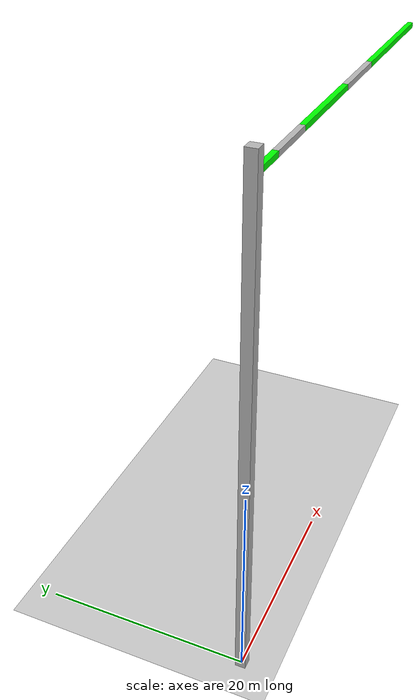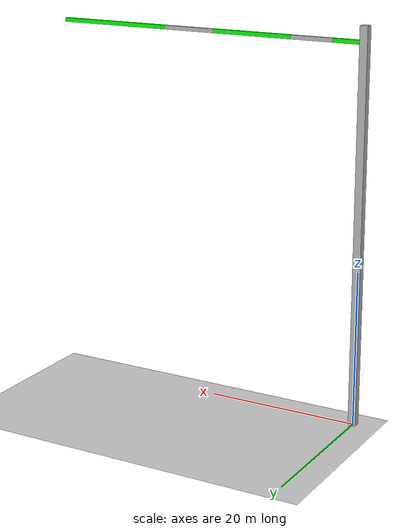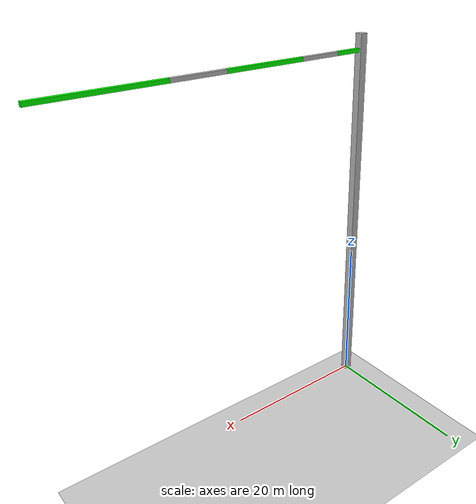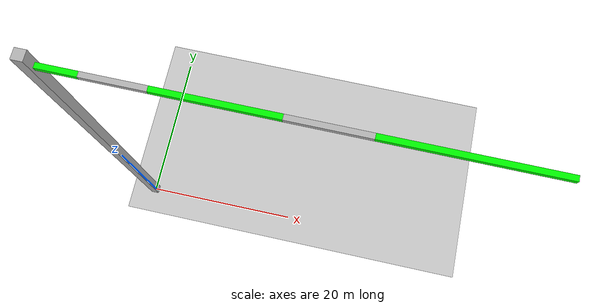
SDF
<?xml version="1.0" ?>
<sdf version="1.8">
    <world name="left_arm_ik_con">
        <physics name="1ms" type="ignored">
            <max_step_size>0.001</max_step_size>
            <real_time_factor>1.0</real_time_factor>
        </physics>
        <plugin
            filename="libignition-gazebo-physics-system.so"
            name="ignition::gazebo::systems::Physics">
        </plugin>
        <plugin
            filename="libignition-gazebo-user-commands-system.so"
            name="ignition::gazebo::systems::UserCommands">
        </plugin>
        <plugin
            filename="libignition-gazebo-scene-broadcaster-system.so"
            name="ignition::gazebo::systems::SceneBroadcaster">
        </plugin>

         <gui fullscreen="0">

        <!-- 3D scene -->
        <plugin filename="GzScene3D" name="3D View">
            <ignition-gui>
            <title>3D View</title>
            <property type="bool" key="showTitleBar">false</property>
            <property type="string" key="state">docked</property>
            </ignition-gui>

            <engine>ogre2</engine>
            <scene>scene</scene>
            <ambient_light>0.4 0.4 0.4</ambient_light>
            <background_color>0.8 0.8 0.8</background_color>
            <camera_pose>2 2 2 0 0.5 -2.5</camera_pose>
        </plugin>

        <!-- World control -->
        <plugin filename="WorldControl" name="World control">
            <ignition-gui>
            <title>World control</title>
            <property type="bool" key="showTitleBar">false</property>
            <property type="bool" key="resizable">false</property>
            <property type="double" key="height">72</property>
            <property type="double" key="width">121</property>
            <property type="double" key="z">1</property>

            <property type="string" key="state">floating</property>
            <anchors target="3D View">
                <line own="left" target="left"/>
                <line own="bottom" target="bottom"/>
            </anchors>
            </ignition-gui>

            <play_pause>true</play_pause>
            <step>true</step>
            <start_paused>true</start_paused>

        </plugin>

        <!-- World statistics -->
        <plugin filename="WorldStats" name="World stats">
            <ignition-gui>
            <title>World stats</title>
            <property type="bool" key="showTitleBar">false</property>
            <property type="bool" key="resizable">false</property>
            <property type="double" key="height">110</property>
            <property type="double" key="width">290</property>
            <property type="double" key="z">1</property>

            <property type="string" key="state">floating</property>
            <anchors target="3D View">
                <line own="right" target="right"/>
                <line own="bottom" target="bottom"/>
            </anchors>
            </ignition-gui>

            <sim_time>true</sim_time>
            <real_time>true</real_time>
            <real_time_factor>true</real_time_factor>
            <iterations>true</iterations>
        </plugin>

        <plugin filename="JointPositionController" name="JointPositionController">
            <ignition-gui>
            <property type="double" key="height">600</property>
            <property type="double" key="width">400</property>

            <property type="string" key="state">floating</property>
            <anchors target="3D View">
                <line own="right" target="right"/>
                <line own="top" target="top"/>
            </anchors>
            </ignition-gui>
            <model_name>body</model_name>
        </plugin>
        </gui>

        <light type="directional" name="sun">
            <cast_shadows>true</cast_shadows>
            <pose>0 0 10 0 0 0</pose>
            <diffuse>0.8 0.8 0.8 1</diffuse>
            <specular>0.2 0.2 0.2 1</specular>
            <attenuation>
                <range>1000</range>
                <constant>0.9</constant>
                <linear>0.01</linear>
                <quadratic>0.001</quadratic>
            </attenuation>
            <direction>-0.5 0.1 -0.9</direction>
        </light>

        <model name="ground_plane">
            <static>true</static>
            <link name="link">
                <collision name="collision">
                <geometry>
                    <plane>
                    <normal>0 0 1</normal>
                    </plane>
                </geometry>
                </collision>
                <visual name="visual">
                <geometry>
                    <plane>
                    <normal>0 0 1</normal>
                    <size>1000 1000</size>
                    </plane>
                </geometry>
                <material>
                    <ambient>0.8 0.8 0.8 1</ambient>
                    <diffuse>0.8 0.8 0.8 1</diffuse>
                    <specular>0.8 0.8 0.8 1</specular>
                </material>
                </visual>
            </link>
        </model>

        <model name="body">
            <joint name="weld" type="fixed">
                <pose>0 0 0 0 0 0</pose>
                <parent>world</parent>
                <child>base_link</child>
            </joint>
            <link name="base_link">
                <pose>0 0 25 0 0 0</pose>
                <visual name="visual">
                    <geometry>
                        <box>
                            <size>1 1 50</size>
                        </box>
                    </geometry>
                </visual>
                <collision name="collision">
                    <geometry>
                    <box>
                        <size>1 1 50</size>
                    </box>
                    </geometry>
                </collision>
            </link>
            <joint name ="ID101" type="revolute">
                <pose relative_to='base_link'>0.5 0 23 0 0 0</pose>
                <parent>world</parent>
                <child>l1_link</child>
                <axis>
                    <xyz>1 0 0</xyz>
                    <limit>
                        <lower>-3.14</lower>
                        <upper>3.14</upper>
                    </limit>
                    <dynamics>
                        <damping>0.1</damping>
                    </dynamics>
                </axis>
            </joint>
            <link name="l1_link">
                <pose relative_to='ID101'>1.75 0 0 0 0 0</pose>
                <inertial>
                    <mass>0.00001</mass>
                    <inertia>
                        <ixx>0.001</ixx>
                        <ixy>0.0</ixy>
                        <ixz>0.0</ixz>
                        <iyy>0.001</iyy>
                        <iyz>0.0</iyz>
                        <izz>0.001</izz>
                    </inertia>
                </inertial>
                <visual name="visual">
                    <geometry>
                        <box>
                            <size>3.5 0.5 0.5</size>
                        </box>
                    </geometry>
                    <material>
                        <ambient>0.0 1 0.0 1</ambient>
                        <diffuse>0.0 1 0.0 1</diffuse>
                        <specular>0.0 1 0.0 1</specular>
                    </material>
                </visual>
                <collision name="collision">
                    <geometry>
                        <box>
                            <size>3.5 0.5 0.5</size>
                        </box>
                    </geometry>
                </collision>
            </link>
            <joint name ="ID102" type="revolute">
                <pose relative_to='l1_link'>1.75 0 0 0 0 0</pose>
                <parent>l1_link</parent>
                <child>l2_link</child>
                <axis>
                    <xyz>0 0 1</xyz>
                    <limit>
                        <lower>-3.14</lower>
                        <upper>3.14</upper>
                    </limit>
                    <dynamics>
                        <damping>0.1</damping>
                    </dynamics>
                </axis>
            </joint>
            <link name="l2_link">
                <pose relative_to='ID102'>2.75 0 0 0 0 0</pose>
                <inertial>
                    <mass>0.00001</mass>
                    <inertia>
                        <ixx>0.001</ixx>
                        <ixy>0.0</ixy>
                        <ixz>0.0</ixz>
                        <iyy>0.001</iyy>
                        <iyz>0.0</iyz>
                        <izz>0.001</izz>
                    </inertia>
                </inertial>
                <visual name="visual">
                    <geometry>
                        <box>
                            <size>5.5 0.5 0.5</size>
                        </box>
                    </geometry>
                </visual>
                <collision name="collision">
                    <geometry>
                        <box>
                            <size>5.5 0.5 0.5</size>
                        </box>
                    </geometry>
                </collision>
            </link>
            <joint name ="ID103" type="revolute">
                <pose relative_to='l2_link'>2.75 0 0 0 0 0</pose>
                <parent>l2_link</parent>
                <child>l3_link</child>
                <axis>
                    <xyz>1 0 0</xyz>
                    <limit>
                        <lower>-3.14</lower>
                        <upper>3.14</upper>
                    </limit>
                    <dynamics>
                        <damping>0.1</damping>
                    </dynamics>
                </axis>
            </joint>
            <link name="l3_link">
                <pose relative_to='ID103'>5.25 0 0 0 0 0</pose>
                <inertial>
                    <mass>0.00001</mass>
                    <inertia>
                        <ixx>0.001</ixx>
                        <ixy>0.0</ixy>
                        <ixz>0.0</ixz>
                        <iyy>0.001</iyy>
                        <iyz>0.0</iyz>
                        <izz>0.001</izz>
                    </inertia>
                </inertial>
                <visual name="visual">
                    <geometry>
                        <box>
                            <size>10.5 0.5 0.5</size>
                        </box>
                    </geometry>
                    <material>
                        <ambient>0.0 1 0.0 1</ambient>
                        <diffuse>0.0 1 0.0 1</diffuse>
                        <specular>0.0 1 0.0 1</specular>
                    </material>
                </visual>
                <collision name="collision">
                    <geometry>
                        <box>
                            <size>10.5 0.5 0.5</size>
                        </box>
                    </geometry>
                </collision>
            </link>
            <joint name ="ID104" type="revolute">
                <pose relative_to='l3_link'>5.25 0 0 0 0 0</pose>
                <parent>l3_link</parent>
                <child>l4_link</child>
                <axis>
                    <xyz>0 1 0</xyz>
                    <limit>
                        <lower>-3.14</lower>
                        <upper>3.14</upper>
                    </limit>
                    <dynamics>
                        <damping>0.1</damping>
                    </dynamics>
                </axis>
            </joint>
            <link name="l4_link">
                <pose relative_to='ID104'>3.5 0 0 0 0 0</pose>
                <inertial>
                    <mass>0.00001</mass>
                    <inertia>
                        <ixx>0.001</ixx>
                        <ixy>0.0</ixy>
                        <ixz>0.0</ixz>
                        <iyy>0.001</iyy>
                        <iyz>0.0</iyz>
                        <izz>0.001</izz>
                    </inertia>
                </inertial>
                <visual name="visual">
                    <geometry>
                        <box>
                            <size>7 0.5 0.5</size>
                        </box>
                    </geometry>
                </visual>
                <collision name="collision">
                    <geometry>
                        <box>
                            <size>7 0.5 0.5</size>
                        </box>
                    </geometry>
                </collision>
            </link>
            <joint name ="ID105" type="revolute">
                <pose relative_to='l4_link'>3.5 0 0 0 0 0</pose>
                <parent>l4_link</parent>
                <child>l5_link</child>
                <axis>
                    <xyz>0 1 0</xyz>
                    <limit>
                        <lower>-3.14</lower>
                        <upper>3.14</upper>
                    </limit>
                    <dynamics>
                        <damping>0.1</damping>
                    </dynamics>
                </axis>
            </joint>
            <link name="l5_link">
                <pose relative_to='ID105'>7.5 0 0 0 0 0</pose>
                <inertial>
                    <mass>0.00001</mass>
                    <inertia>
                        <ixx>0.001</ixx>
                        <ixy>0.0</ixy>
                        <ixz>0.0</ixz>
                        <iyy>0.001</iyy>
                        <iyz>0.0</iyz>
                        <izz>0.001</izz>
                    </inertia>
                </inertial>
                <visual name="visual">
                    <geometry>
                        <box>
                            <size>15 0.5 0.5</size>
                        </box>
                    </geometry>
                    <material>
                        <ambient>0.0 1 0.0 1</ambient>
                        <diffuse>0.0 1 0.0 1</diffuse>
                        <specular>0.0 1 0.0 1</specular>
                    </material>
                </visual>
                <collision name="collision">
                    <geometry>
                        <box>
                            <size>15 0.5 0.5</size>
                        </box>
                    </geometry>
                </collision>
            </link>
            <plugin
                filename="ignition-gazebo-joint-position-controller-system"
                name="gz::sim::systems::JointPositionController">
                <joint_name>ID101</joint_name>
                <topic>rotor_cmd1</topic>
                <p_gain>1</p_gain>
                <i_gain>0.1</i_gain>
                <d_gain>0.01</d_gain>
                <i_max>1</i_max>
                <i_min>-1</i_min>
                <cmd_max>10</cmd_max>
                <cmd_min>-10</cmd_min>
            </plugin>
            <plugin
                filename="ignition-gazebo-joint-position-controller-system"
                name="gz::sim::systems::JointPositionController">
                <joint_name>ID102</joint_name>
                <topic>rotor_cmd2</topic>
                <p_gain>1010</p_gain>
                <i_gain>0.1</i_gain>
                <d_gain>0.01</d_gain>
                <i_max>1</i_max>
                <i_min>-1</i_min>
                <cmd_max>10</cmd_max>
                <cmd_min>-10</cmd_min>
            </plugin>
            <plugin
                filename="ignition-gazebo-joint-position-controller-system"
                name="gz::sim::systems::JointPositionController">
                <joint_name>ID103</joint_name>
                <topic>rotor_cmd3</topic>
                <p_gain>1</p_gain>
                <i_gain>0.1</i_gain>
                <d_gain>0.01</d_gain>
                <i_max>1</i_max>
                <i_min>-1</i_min>
                <cmd_max>10</cmd_max>
                <cmd_min>-10</cmd_min>
            </plugin>
            <plugin
                filename="ignition-gazebo-joint-position-controller-system"
                name="gz::sim::systems::JointPositionController">
                <joint_name>ID104</joint_name>
                <topic>rotor_cmd4</topic>
                <p_gain>1</p_gain>
                <i_gain>0.1</i_gain>
                <d_gain>0.01</d_gain>
                <i_max>1</i_max>
                <i_min>-1</i_min>
                <cmd_max>10</cmd_max>
                <cmd_min>-10</cmd_min>
            </plugin>
            <plugin
                filename="ignition-gazebo-joint-position-controller-system"
                name="gz::sim::systems::JointPositionController">
                <joint_name>ID105</joint_name>
                <topic>rotor_cmd5</topic>
                <p_gain>1</p_gain>
                <i_gain>0.1</i_gain>
                <d_gain>0.01</d_gain>
                <i_max>1</i_max>
                <i_min>-1</i_min>
                <cmd_max>10</cmd_max>
                <cmd_min>-10</cmd_min>
            </plugin>
        </model>
    </world>
</sdf>
